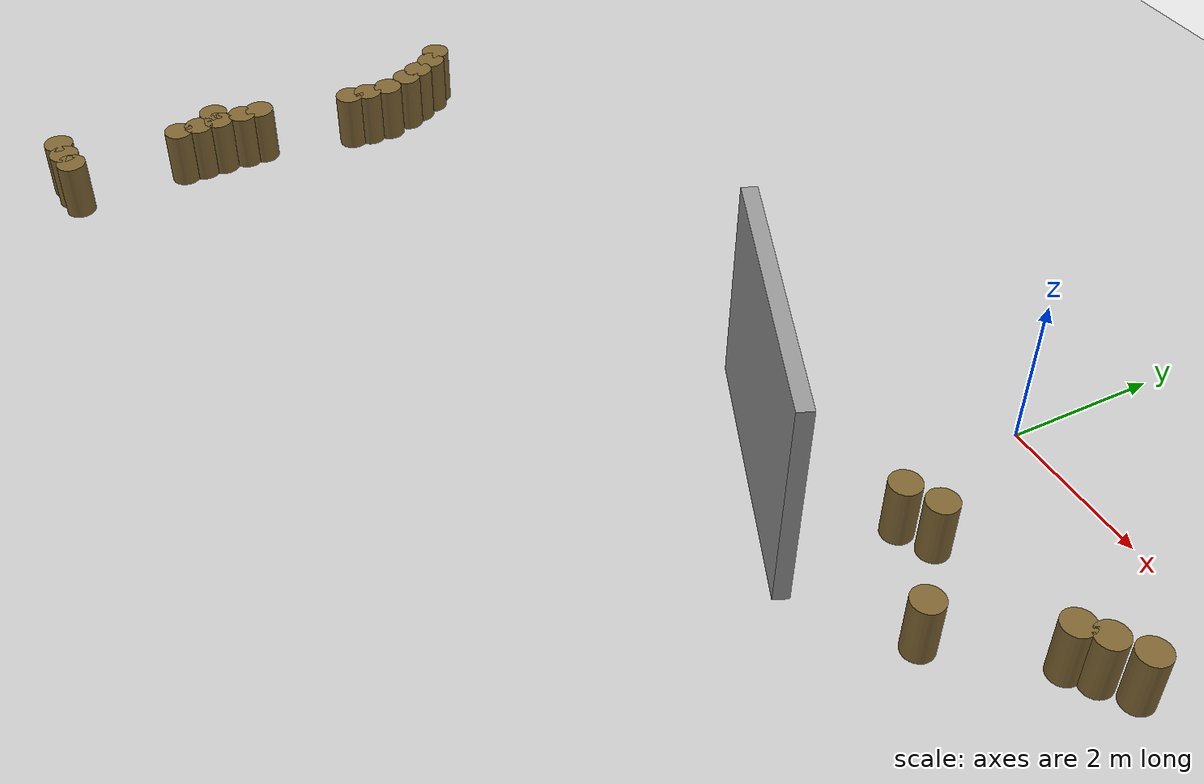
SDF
<sdf version="1.7">
 <world name="default">
  <model name="ground_plane">
   <static>1</static>
   <link name="link">
    <collision name="collision">
     <geometry><plane><normal>0 0 1</normal><size>100 100</size></plane></geometry>
     <surface><friction><ode><mu>100</mu><mu2>50</mu2></ode></friction></surface>
    </collision>
    <visual name="visual">
     <cast_shadows>0</cast_shadows>
     <geometry><plane><normal>0 0 1</normal><size>100 100</size></plane></geometry>
     <material>
      <script><uri>file://media/materials/scripts/gazebo.material</uri><name>Gazebo/Grey</name></script>
     </material>
    </visual>
   </link>
  </model>
  <model name="mini_cylinder_0_clone_0_clone_clone_clone_clone_5">
   <link name="link">
    <inertial>
     <mass>1</mass>
     <inertia><ixx>0.145833</ixx><ixy>0</ixy><ixz>0</ixz><iyy>0.145833</iyy><iyz>0</iyz><izz>0.125</izz></inertia>
    </inertial>
    <visual name="visual">
     <geometry><cylinder><radius>0.2</radius><length>0.8</length></cylinder></geometry>
     <material>
      <script><name>Gazebo/Grey</name><uri>file://media/materials/scripts/gazebo.material</uri></script>
      <shader type="vertex"><normal_map>__default__</normal_map></shader>
      <ambient>0.5 0.4 0.2 1</ambient>
      <diffuse>0.7 0.7 0.7 1</diffuse>
      <specular>0.01 0.01 0.01 1</specular>
      <emissive>0 0 0 1</emissive>
     </material>
    </visual>
    <collision name="collision">
     <geometry><cylinder><radius>0.2</radius><length>0.8</length></cylinder></geometry>
     <surface>
      <friction>
       <ode><mu>1</mu><mu2>1</mu2><fdir1>0 0 0</fdir1><slip1>0</slip1><slip2>0</slip2></ode>
       <torsional>
        <coefficient>1</coefficient>
        <patch_radius>0</patch_radius>
        <surface_radius>0</surface_radius>
        <use_patch_radius>1</use_patch_radius>
        <ode><slip>0</slip></ode>
       </torsional>
      </friction>
      <bounce><restitution_coefficient>0</restitution_coefficient><threshold>1e+06</threshold></bounce>
      <contact>
       <collide_without_contact>0</collide_without_contact>
       <collide_without_contact_bitmask>1</collide_without_contact_bitmask>
       <collide_bitmask>1</collide_bitmask>
       <ode>
        <soft_cfm>0</soft_cfm>
        <soft_erp>0.2</soft_erp>
        <kp>1e+13</kp>
        <kd>1</kd>
        <max_vel>0.01</max_vel>
        <min_depth>0</min_depth>
       </ode>
       <bullet>
        <split_impulse>1</split_impulse>
        <split_impulse_penetration_threshold>-0.01</split_impulse_penetration_threshold>
        <soft_cfm>0</soft_cfm>
        <soft_erp>0.2</soft_erp>
        <kp>1e+13</kp>
        <kd>1</kd>
       </bullet>
      </contact>
     </surface>
    </collision>
   </link>
   <static>1</static>
   <pose>0.594741 -2.19524 0.4 0 -0 0</pose>
  </model>
  <model name="mini_cylinder_0_clone_0_clone_clone_clone_clone_6">
   <link name="link">
    <inertial>
     <mass>1</mass>
     <inertia><ixx>0.145833</ixx><ixy>0</ixy><ixz>0</ixz><iyy>0.145833</iyy><iyz>0</iyz><izz>0.125</izz></inertia>
    </inertial>
    <visual name="visual">
     <geometry><cylinder><radius>0.2</radius><length>0.8</length></cylinder></geometry>
     <material>
      <script><name>Gazebo/Grey</name><uri>file://media/materials/scripts/gazebo.material</uri></script>
      <shader type="vertex"><normal_map>__default__</normal_map></shader>
      <ambient>0.5 0.4 0.2 1</ambient>
      <diffuse>0.7 0.7 0.7 1</diffuse>
      <specular>0.01 0.01 0.01 1</specular>
      <emissive>0 0 0 1</emissive>
     </material>
    </visual>
    <collision name="collision">
     <geometry><cylinder><radius>0.2</radius><length>0.8</length></cylinder></geometry>
     <surface>
      <friction>
       <ode><mu>1</mu><mu2>1</mu2><fdir1>0 0 0</fdir1><slip1>0</slip1><slip2>0</slip2></ode>
       <torsional>
        <coefficient>1</coefficient>
        <patch_radius>0</patch_radius>
        <surface_radius>0</surface_radius>
        <use_patch_radius>1</use_patch_radius>
        <ode><slip>0</slip></ode>
       </torsional>
      </friction>
      <bounce><restitution_coefficient>0</restitution_coefficient><threshold>1e+06</threshold></bounce>
      <contact>
       <collide_without_contact>0</collide_without_contact>
       <collide_without_contact_bitmask>1</collide_without_contact_bitmask>
       <collide_bitmask>1</collide_bitmask>
       <ode>
        <soft_cfm>0</soft_cfm>
        <soft_erp>0.2</soft_erp>
        <kp>1e+13</kp>
        <kd>1</kd>
        <max_vel>0.01</max_vel>
        <min_depth>0</min_depth>
       </ode>
       <bullet>
        <split_impulse>1</split_impulse>
        <split_impulse_penetration_threshold>-0.01</split_impulse_penetration_threshold>
        <soft_cfm>0</soft_cfm>
        <soft_erp>0.2</soft_erp>
        <kp>1e+13</kp>
        <kd>1</kd>
       </bullet>
      </contact>
     </surface>
    </collision>
   </link>
   <static>1</static>
   <pose>1 -2 0.4 0 -0 0</pose>
  </model>
  <model name="mini_cylinder_0_clone_0_clone_clone_clone_clone_7">
   <link name="link">
    <inertial>
     <mass>1</mass>
     <inertia><ixx>0.145833</ixx><ixy>0</ixy><ixz>0</ixz><iyy>0.145833</iyy><iyz>0</iyz><izz>0.125</izz></inertia>
    </inertial>
    <visual name="visual">
     <geometry><cylinder><radius>0.2</radius><length>0.8</length></cylinder></geometry>
     <material>
      <script><name>Gazebo/Grey</name><uri>file://media/materials/scripts/gazebo.material</uri></script>
      <shader type="vertex"><normal_map>__default__</normal_map></shader>
      <ambient>0.5 0.4 0.2 1</ambient>
      <diffuse>0.7 0.7 0.7 1</diffuse>
      <specular>0.01 0.01 0.01 1</specular>
      <emissive>0 0 0 1</emissive>
     </material>
    </visual>
    <collision name="collision">
     <geometry><cylinder><radius>0.2</radius><length>0.8</length></cylinder></geometry>
     <surface>
      <friction>
       <ode><mu>1</mu><mu2>1</mu2><fdir1>0 0 0</fdir1><slip1>0</slip1><slip2>0</slip2></ode>
       <torsional>
        <coefficient>1</coefficient>
        <patch_radius>0</patch_radius>
        <surface_radius>0</surface_radius>
        <use_patch_radius>1</use_patch_radius>
        <ode><slip>0</slip></ode>
       </torsional>
      </friction>
      <bounce><restitution_coefficient>0</restitution_coefficient><threshold>1e+06</threshold></bounce>
      <contact>
       <collide_without_contact>0</collide_without_contact>
       <collide_without_contact_bitmask>1</collide_without_contact_bitmask>
       <collide_bitmask>1</collide_bitmask>
       <ode>
        <soft_cfm>0</soft_cfm>
        <soft_erp>0.2</soft_erp>
        <kp>1e+13</kp>
        <kd>1</kd>
        <max_vel>0.01</max_vel>
        <min_depth>0</min_depth>
       </ode>
       <bullet>
        <split_impulse>1</split_impulse>
        <split_impulse_penetration_threshold>-0.01</split_impulse_penetration_threshold>
        <soft_cfm>0</soft_cfm>
        <soft_erp>0.2</soft_erp>
        <kp>1e+13</kp>
        <kd>1</kd>
       </bullet>
      </contact>
     </surface>
    </collision>
   </link>
   <static>1</static>
   <pose>2.95172 -1.80895 0.4 0 -0 0</pose>
  </model>
  <model name="mini_cylinder_0_clone_0_clone_clone_clone_clone_8">
   <link name="link">
    <inertial>
     <mass>1</mass>
     <inertia><ixx>0.145833</ixx><ixy>0</ixy><ixz>0</ixz><iyy>0.145833</iyy><iyz>0</iyz><izz>0.125</izz></inertia>
    </inertial>
    <visual name="visual">
     <geometry><cylinder><radius>0.2</radius><length>0.8</length></cylinder></geometry>
     <material>
      <script><name>Gazebo/Grey</name><uri>file://media/materials/scripts/gazebo.material</uri></script>
      <shader type="vertex"><normal_map>__default__</normal_map></shader>
      <ambient>0.5 0.4 0.2 1</ambient>
      <diffuse>0.7 0.7 0.7 1</diffuse>
      <specular>0.01 0.01 0.01 1</specular>
      <emissive>0 0 0 1</emissive>
     </material>
    </visual>
    <collision name="collision">
     <geometry><cylinder><radius>0.2</radius><length>0.8</length></cylinder></geometry>
     <surface>
      <friction>
       <ode><mu>1</mu><mu2>1</mu2><fdir1>0 0 0</fdir1><slip1>0</slip1><slip2>0</slip2></ode>
       <torsional>
        <coefficient>1</coefficient>
        <patch_radius>0</patch_radius>
        <surface_radius>0</surface_radius>
        <use_patch_radius>1</use_patch_radius>
        <ode><slip>0</slip></ode>
       </torsional>
      </friction>
      <bounce><restitution_coefficient>0</restitution_coefficient><threshold>1e+06</threshold></bounce>
      <contact>
       <collide_without_contact>0</collide_without_contact>
       <collide_without_contact_bitmask>1</collide_without_contact_bitmask>
       <collide_bitmask>1</collide_bitmask>
       <ode>
        <soft_cfm>0</soft_cfm>
        <soft_erp>0.2</soft_erp>
        <kp>1e+13</kp>
        <kd>1</kd>
        <max_vel>0.01</max_vel>
        <min_depth>0</min_depth>
       </ode>
       <bullet>
        <split_impulse>1</split_impulse>
        <split_impulse_penetration_threshold>-0.01</split_impulse_penetration_threshold>
        <soft_cfm>0</soft_cfm>
        <soft_erp>0.2</soft_erp>
        <kp>1e+13</kp>
        <kd>1</kd>
       </bullet>
      </contact>
     </surface>
    </collision>
   </link>
   <static>1</static>
   <pose>3.22202 -1.6158 0.4 0 -0 0</pose>
  </model>
  <model name="mini_cylinder_0_clone_0_clone_clone_clone_clone_9">
   <link name="link">
    <inertial>
     <mass>1</mass>
     <inertia><ixx>0.145833</ixx><ixy>0</ixy><ixz>0</ixz><iyy>0.145833</iyy><iyz>0</iyz><izz>0.125</izz></inertia>
    </inertial>
    <visual name="visual">
     <geometry><cylinder><radius>0.2</radius><length>0.8</length></cylinder></geometry>
     <material>
      <script><name>Gazebo/Grey</name><uri>file://media/materials/scripts/gazebo.material</uri></script>
      <shader type="vertex"><normal_map>__default__</normal_map></shader>
      <ambient>0.5 0.4 0.2 1</ambient>
      <diffuse>0.7 0.7 0.7 1</diffuse>
      <specular>0.01 0.01 0.01 1</specular>
      <emissive>0 0 0 1</emissive>
     </material>
    </visual>
    <collision name="collision">
     <geometry><cylinder><radius>0.2</radius><length>0.8</length></cylinder></geometry>
     <surface>
      <friction>
       <ode><mu>1</mu><mu2>1</mu2><fdir1>0 0 0</fdir1><slip1>0</slip1><slip2>0</slip2></ode>
       <torsional>
        <coefficient>1</coefficient>
        <patch_radius>0</patch_radius>
        <surface_radius>0</surface_radius>
        <use_patch_radius>1</use_patch_radius>
        <ode><slip>0</slip></ode>
       </torsional>
      </friction>
      <bounce><restitution_coefficient>0</restitution_coefficient><threshold>1e+06</threshold></bounce>
      <contact>
       <collide_without_contact>0</collide_without_contact>
       <collide_without_contact_bitmask>1</collide_without_contact_bitmask>
       <collide_bitmask>1</collide_bitmask>
       <ode>
        <soft_cfm>0</soft_cfm>
        <soft_erp>0.2</soft_erp>
        <kp>1e+13</kp>
        <kd>1</kd>
        <max_vel>0.01</max_vel>
        <min_depth>0</min_depth>
       </ode>
       <bullet>
        <split_impulse>1</split_impulse>
        <split_impulse_penetration_threshold>-0.01</split_impulse_penetration_threshold>
        <soft_cfm>0</soft_cfm>
        <soft_erp>0.2</soft_erp>
        <kp>1e+13</kp>
        <kd>1</kd>
       </bullet>
      </contact>
     </surface>
    </collision>
   </link>
   <static>1</static>
   <pose>3.56983 -1.38381 0.4 0 -0 0</pose>
  </model>
  <model name="mini_cylinder_0_clone_0_clone_clone_clone_clone_11">
   <link name="link">
    <inertial>
     <mass>1</mass>
     <inertia><ixx>0.145833</ixx><ixy>0</ixy><ixz>0</ixz><iyy>0.145833</iyy><iyz>0</iyz><izz>0.125</izz></inertia>
    </inertial>
    <visual name="visual">
     <geometry><cylinder><radius>0.2</radius><length>0.8</length></cylinder></geometry>
     <material>
      <script><name>Gazebo/Grey</name><uri>file://media/materials/scripts/gazebo.material</uri></script>
      <shader type="vertex"><normal_map>__default__</normal_map></shader>
      <ambient>0.5 0.4 0.2 1</ambient>
      <diffuse>0.7 0.7 0.7 1</diffuse>
      <specular>0.01 0.01 0.01 1</specular>
      <emissive>0 0 0 1</emissive>
     </material>
    </visual>
    <collision name="collision">
     <geometry><cylinder><radius>0.2</radius><length>0.8</length></cylinder></geometry>
     <surface>
      <friction>
       <ode><mu>1</mu><mu2>1</mu2><fdir1>0 0 0</fdir1><slip1>0</slip1><slip2>0</slip2></ode>
       <torsional>
        <coefficient>1</coefficient>
        <patch_radius>0</patch_radius>
        <surface_radius>0</surface_radius>
        <use_patch_radius>1</use_patch_radius>
        <ode><slip>0</slip></ode>
       </torsional>
      </friction>
      <bounce><restitution_coefficient>0</restitution_coefficient><threshold>1e+06</threshold></bounce>
      <contact>
       <collide_without_contact>0</collide_without_contact>
       <collide_without_contact_bitmask>1</collide_without_contact_bitmask>
       <collide_bitmask>1</collide_bitmask>
       <ode>
        <soft_cfm>0</soft_cfm>
        <soft_erp>0.2</soft_erp>
        <kp>1e+13</kp>
        <kd>1</kd>
        <max_vel>0.01</max_vel>
        <min_depth>0</min_depth>
       </ode>
       <bullet>
        <split_impulse>1</split_impulse>
        <split_impulse_penetration_threshold>-0.01</split_impulse_penetration_threshold>
        <soft_cfm>0</soft_cfm>
        <soft_erp>0.2</soft_erp>
        <kp>1e+13</kp>
        <kd>1</kd>
       </bullet>
      </contact>
     </surface>
    </collision>
   </link>
   <static>1</static>
   <pose>2.02446 -2.96819 0.4 0 -0 0</pose>
  </model>
  <model name="mini_cylinder_0_clone_0_clone_clone_clone_clone_3_clone_13">
   <link name="link">
    <inertial>
     <mass>1</mass>
     <inertia><ixx>0.145833</ixx><ixy>0</ixy><ixz>0</ixz><iyy>0.145833</iyy><iyz>0</iyz><izz>0.125</izz></inertia>
    </inertial>
    <visual name="visual">
     <geometry><cylinder><radius>0.2</radius><length>0.8</length></cylinder></geometry>
     <material>
      <script><name>Gazebo/Grey</name><uri>file://media/materials/scripts/gazebo.material</uri></script>
      <shader type="vertex"><normal_map>__default__</normal_map></shader>
      <ambient>0.5 0.4 0.2 1</ambient>
      <diffuse>0.7 0.7 0.7 1</diffuse>
      <specular>0.01 0.01 0.01 1</specular>
      <emissive>0 0 0 1</emissive>
     </material>
    </visual>
    <collision name="collision">
     <geometry><cylinder><radius>0.2</radius><length>0.8</length></cylinder></geometry>
     <surface>
      <friction>
       <ode><mu>1</mu><mu2>1</mu2><fdir1>0 0 0</fdir1><slip1>0</slip1><slip2>0</slip2></ode>
       <torsional>
        <coefficient>1</coefficient>
        <patch_radius>0</patch_radius>
        <surface_radius>0</surface_radius>
        <use_patch_radius>1</use_patch_radius>
        <ode><slip>0</slip></ode>
       </torsional>
      </friction>
      <bounce><restitution_coefficient>0</restitution_coefficient><threshold>1e+06</threshold></bounce>
      <contact>
       <collide_without_contact>0</collide_without_contact>
       <collide_without_contact_bitmask>1</collide_without_contact_bitmask>
       <collide_bitmask>1</collide_bitmask>
       <ode>
        <soft_cfm>0</soft_cfm>
        <soft_erp>0.2</soft_erp>
        <kp>1e+13</kp>
        <kd>1</kd>
        <max_vel>0.01</max_vel>
        <min_depth>0</min_depth>
       </ode>
       <bullet>
        <split_impulse>1</split_impulse>
        <split_impulse_penetration_threshold>-0.01</split_impulse_penetration_threshold>
        <soft_cfm>0</soft_cfm>
        <soft_erp>0.2</soft_erp>
        <kp>1e+13</kp>
        <kd>1</kd>
       </bullet>
      </contact>
     </surface>
    </collision>
   </link>
   <static>1</static>
   <pose>-10.069 -3.1775 0.4 0 -0 0</pose>
  </model>
  <model name="mini_cylinder_0_clone_0_clone_clone_clone_clone_3_clone_14">
   <link name="link">
    <inertial>
     <mass>1</mass>
     <inertia><ixx>0.145833</ixx><ixy>0</ixy><ixz>0</ixz><iyy>0.145833</iyy><iyz>0</iyz><izz>0.125</izz></inertia>
    </inertial>
    <visual name="visual">
     <geometry><cylinder><radius>0.2</radius><length>0.8</length></cylinder></geometry>
     <material>
      <script><name>Gazebo/Grey</name><uri>file://media/materials/scripts/gazebo.material</uri></script>
      <shader type="vertex"><normal_map>__default__</normal_map></shader>
      <ambient>0.5 0.4 0.2 1</ambient>
      <diffuse>0.7 0.7 0.7 1</diffuse>
      <specular>0.01 0.01 0.01 1</specular>
      <emissive>0 0 0 1</emissive>
     </material>
    </visual>
    <collision name="collision">
     <geometry><cylinder><radius>0.2</radius><length>0.8</length></cylinder></geometry>
     <surface>
      <friction>
       <ode><mu>1</mu><mu2>1</mu2><fdir1>0 0 0</fdir1><slip1>0</slip1><slip2>0</slip2></ode>
       <torsional>
        <coefficient>1</coefficient>
        <patch_radius>0</patch_radius>
        <surface_radius>0</surface_radius>
        <use_patch_radius>1</use_patch_radius>
        <ode><slip>0</slip></ode>
       </torsional>
      </friction>
      <bounce><restitution_coefficient>0</restitution_coefficient><threshold>1e+06</threshold></bounce>
      <contact>
       <collide_without_contact>0</collide_without_contact>
       <collide_without_contact_bitmask>1</collide_without_contact_bitmask>
       <collide_bitmask>1</collide_bitmask>
       <ode>
        <soft_cfm>0</soft_cfm>
        <soft_erp>0.2</soft_erp>
        <kp>1e+13</kp>
        <kd>1</kd>
        <max_vel>0.01</max_vel>
        <min_depth>0</min_depth>
       </ode>
       <bullet>
        <split_impulse>1</split_impulse>
        <split_impulse_penetration_threshold>-0.01</split_impulse_penetration_threshold>
        <soft_cfm>0</soft_cfm>
        <soft_erp>0.2</soft_erp>
        <kp>1e+13</kp>
        <kd>1</kd>
       </bullet>
      </contact>
     </surface>
    </collision>
   </link>
   <static>1</static>
   <pose>-9.87176 -3.33436 0.4 0 -0 0</pose>
  </model>
  <model name="mini_cylinder_0_clone_0_clone_clone_clone_clone_3_clone_15">
   <link name="link">
    <inertial>
     <mass>1</mass>
     <inertia><ixx>0.145833</ixx><ixy>0</ixy><ixz>0</ixz><iyy>0.145833</iyy><iyz>0</iyz><izz>0.125</izz></inertia>
    </inertial>
    <visual name="visual">
     <geometry><cylinder><radius>0.2</radius><length>0.8</length></cylinder></geometry>
     <material>
      <script><name>Gazebo/Grey</name><uri>file://media/materials/scripts/gazebo.material</uri></script>
      <shader type="vertex"><normal_map>__default__</normal_map></shader>
      <ambient>0.5 0.4 0.2 1</ambient>
      <diffuse>0.7 0.7 0.7 1</diffuse>
      <specular>0.01 0.01 0.01 1</specular>
      <emissive>0 0 0 1</emissive>
     </material>
    </visual>
    <collision name="collision">
     <geometry><cylinder><radius>0.2</radius><length>0.8</length></cylinder></geometry>
     <surface>
      <friction>
       <ode><mu>1</mu><mu2>1</mu2><fdir1>0 0 0</fdir1><slip1>0</slip1><slip2>0</slip2></ode>
       <torsional>
        <coefficient>1</coefficient>
        <patch_radius>0</patch_radius>
        <surface_radius>0</surface_radius>
        <use_patch_radius>1</use_patch_radius>
        <ode><slip>0</slip></ode>
       </torsional>
      </friction>
      <bounce><restitution_coefficient>0</restitution_coefficient><threshold>1e+06</threshold></bounce>
      <contact>
       <collide_without_contact>0</collide_without_contact>
       <collide_without_contact_bitmask>1</collide_without_contact_bitmask>
       <collide_bitmask>1</collide_bitmask>
       <ode>
        <soft_cfm>0</soft_cfm>
        <soft_erp>0.2</soft_erp>
        <kp>1e+13</kp>
        <kd>1</kd>
        <max_vel>0.01</max_vel>
        <min_depth>0</min_depth>
       </ode>
       <bullet>
        <split_impulse>1</split_impulse>
        <split_impulse_penetration_threshold>-0.01</split_impulse_penetration_threshold>
        <soft_cfm>0</soft_cfm>
        <soft_erp>0.2</soft_erp>
        <kp>1e+13</kp>
        <kd>1</kd>
       </bullet>
      </contact>
     </surface>
    </collision>
   </link>
   <static>1</static>
   <pose>-9.71455 -3.60876 0.4 0 -0 0</pose>
  </model>
  <model name="mini_cylinder_0_clone_0_clone_clone_clone_clone_3_clone_16">
   <link name="link">
    <inertial>
     <mass>1</mass>
     <inertia><ixx>0.145833</ixx><ixy>0</ixy><ixz>0</ixz><iyy>0.145833</iyy><iyz>0</iyz><izz>0.125</izz></inertia>
    </inertial>
    <visual name="visual">
     <geometry><cylinder><radius>0.2</radius><length>0.8</length></cylinder></geometry>
     <material>
      <script><name>Gazebo/Grey</name><uri>file://media/materials/scripts/gazebo.material</uri></script>
      <shader type="vertex"><normal_map>__default__</normal_map></shader>
      <ambient>0.5 0.4 0.2 1</ambient>
      <diffuse>0.7 0.7 0.7 1</diffuse>
      <specular>0.01 0.01 0.01 1</specular>
      <emissive>0 0 0 1</emissive>
     </material>
    </visual>
    <collision name="collision">
     <geometry><cylinder><radius>0.2</radius><length>0.8</length></cylinder></geometry>
     <surface>
      <friction>
       <ode><mu>1</mu><mu2>1</mu2><fdir1>0 0 0</fdir1><slip1>0</slip1><slip2>0</slip2></ode>
       <torsional>
        <coefficient>1</coefficient>
        <patch_radius>0</patch_radius>
        <surface_radius>0</surface_radius>
        <use_patch_radius>1</use_patch_radius>
        <ode><slip>0</slip></ode>
       </torsional>
      </friction>
      <bounce><restitution_coefficient>0</restitution_coefficient><threshold>1e+06</threshold></bounce>
      <contact>
       <collide_without_contact>0</collide_without_contact>
       <collide_without_contact_bitmask>1</collide_without_contact_bitmask>
       <collide_bitmask>1</collide_bitmask>
       <ode>
        <soft_cfm>0</soft_cfm>
        <soft_erp>0.2</soft_erp>
        <kp>1e+13</kp>
        <kd>1</kd>
        <max_vel>0.01</max_vel>
        <min_depth>0</min_depth>
       </ode>
       <bullet>
        <split_impulse>1</split_impulse>
        <split_impulse_penetration_threshold>-0.01</split_impulse_penetration_threshold>
        <soft_cfm>0</soft_cfm>
        <soft_erp>0.2</soft_erp>
        <kp>1e+13</kp>
        <kd>1</kd>
       </bullet>
      </contact>
     </surface>
    </collision>
   </link>
   <static>1</static>
   <pose>-9.59735 -3.84457 0.4 0 -0 0</pose>
  </model>
  <model name="mini_cylinder_0_clone_0_clone_clone_clone_clone_3_clone_17">
   <link name="link">
    <inertial>
     <mass>1</mass>
     <inertia><ixx>0.145833</ixx><ixy>0</ixy><ixz>0</ixz><iyy>0.145833</iyy><iyz>0</iyz><izz>0.125</izz></inertia>
    </inertial>
    <visual name="visual">
     <geometry><cylinder><radius>0.2</radius><length>0.8</length></cylinder></geometry>
     <material>
      <script><name>Gazebo/Grey</name><uri>file://media/materials/scripts/gazebo.material</uri></script>
      <shader type="vertex"><normal_map>__default__</normal_map></shader>
      <ambient>0.5 0.4 0.2 1</ambient>
      <diffuse>0.7 0.7 0.7 1</diffuse>
      <specular>0.01 0.01 0.01 1</specular>
      <emissive>0 0 0 1</emissive>
     </material>
    </visual>
    <collision name="collision">
     <geometry><cylinder><radius>0.2</radius><length>0.8</length></cylinder></geometry>
     <surface>
      <friction>
       <ode><mu>1</mu><mu2>1</mu2><fdir1>0 0 0</fdir1><slip1>0</slip1><slip2>0</slip2></ode>
       <torsional>
        <coefficient>1</coefficient>
        <patch_radius>0</patch_radius>
        <surface_radius>0</surface_radius>
        <use_patch_radius>1</use_patch_radius>
        <ode><slip>0</slip></ode>
       </torsional>
      </friction>
      <bounce><restitution_coefficient>0</restitution_coefficient><threshold>1e+06</threshold></bounce>
      <contact>
       <collide_without_contact>0</collide_without_contact>
       <collide_without_contact_bitmask>1</collide_without_contact_bitmask>
       <collide_bitmask>1</collide_bitmask>
       <ode>
        <soft_cfm>0</soft_cfm>
        <soft_erp>0.2</soft_erp>
        <kp>1e+13</kp>
        <kd>1</kd>
        <max_vel>0.01</max_vel>
        <min_depth>0</min_depth>
       </ode>
       <bullet>
        <split_impulse>1</split_impulse>
        <split_impulse_penetration_threshold>-0.01</split_impulse_penetration_threshold>
        <soft_cfm>0</soft_cfm>
        <soft_erp>0.2</soft_erp>
        <kp>1e+13</kp>
        <kd>1</kd>
       </bullet>
      </contact>
     </surface>
    </collision>
   </link>
   <static>1</static>
   <pose>-9.47945 -4.1983 0.4 0 -0 0</pose>
  </model>
  <model name="mini_cylinder_0_clone_0_clone_clone_clone_clone_3_clone_18">
   <link name="link">
    <inertial>
     <mass>1</mass>
     <inertia><ixx>0.145833</ixx><ixy>0</ixy><ixz>0</ixz><iyy>0.145833</iyy><iyz>0</iyz><izz>0.125</izz></inertia>
    </inertial>
    <visual name="visual">
     <geometry><cylinder><radius>0.2</radius><length>0.8</length></cylinder></geometry>
     <material>
      <script><name>Gazebo/Grey</name><uri>file://media/materials/scripts/gazebo.material</uri></script>
      <shader type="vertex"><normal_map>__default__</normal_map></shader>
      <ambient>0.5 0.4 0.2 1</ambient>
      <diffuse>0.7 0.7 0.7 1</diffuse>
      <specular>0.01 0.01 0.01 1</specular>
      <emissive>0 0 0 1</emissive>
     </material>
    </visual>
    <collision name="collision">
     <geometry><cylinder><radius>0.2</radius><length>0.8</length></cylinder></geometry>
     <surface>
      <friction>
       <ode><mu>1</mu><mu2>1</mu2><fdir1>0 0 0</fdir1><slip1>0</slip1><slip2>0</slip2></ode>
       <torsional>
        <coefficient>1</coefficient>
        <patch_radius>0</patch_radius>
        <surface_radius>0</surface_radius>
        <use_patch_radius>1</use_patch_radius>
        <ode><slip>0</slip></ode>
       </torsional>
      </friction>
      <bounce><restitution_coefficient>0</restitution_coefficient><threshold>1e+06</threshold></bounce>
      <contact>
       <collide_without_contact>0</collide_without_contact>
       <collide_without_contact_bitmask>1</collide_without_contact_bitmask>
       <collide_bitmask>1</collide_bitmask>
       <ode>
        <soft_cfm>0</soft_cfm>
        <soft_erp>0.2</soft_erp>
        <kp>1e+13</kp>
        <kd>1</kd>
        <max_vel>0.01</max_vel>
        <min_depth>0</min_depth>
       </ode>
       <bullet>
        <split_impulse>1</split_impulse>
        <split_impulse_penetration_threshold>-0.01</split_impulse_penetration_threshold>
        <soft_cfm>0</soft_cfm>
        <soft_erp>0.2</soft_erp>
        <kp>1e+13</kp>
        <kd>1</kd>
       </bullet>
      </contact>
     </surface>
    </collision>
   </link>
   <static>1</static>
   <pose>-9.47945 -4.512 0.4 0 -0 0</pose>
  </model>
  <model name="mini_cylinder_0_clone_0_clone_clone_clone_clone_3_clone_20_clone_105">
   <link name="link">
    <inertial>
     <mass>1</mass>
     <inertia><ixx>0.145833</ixx><ixy>0</ixy><ixz>0</ixz><iyy>0.145833</iyy><iyz>0</iyz><izz>0.125</izz></inertia>
    </inertial>
    <visual name="visual">
     <geometry><cylinder><radius>0.2</radius><length>0.8</length></cylinder></geometry>
     <material>
      <script><name>Gazebo/Grey</name><uri>file://media/materials/scripts/gazebo.material</uri></script>
      <shader type="vertex"><normal_map>__default__</normal_map></shader>
      <ambient>0.5 0.4 0.2 1</ambient>
      <diffuse>0.7 0.7 0.7 1</diffuse>
      <specular>0.01 0.01 0.01 1</specular>
      <emissive>0 0 0 1</emissive>
     </material>
    </visual>
    <collision name="collision">
     <geometry><cylinder><radius>0.2</radius><length>0.8</length></cylinder></geometry>
     <surface>
      <friction>
       <ode><mu>1</mu><mu2>1</mu2><fdir1>0 0 0</fdir1><slip1>0</slip1><slip2>0</slip2></ode>
       <torsional>
        <coefficient>1</coefficient>
        <patch_radius>0</patch_radius>
        <surface_radius>0</surface_radius>
        <use_patch_radius>1</use_patch_radius>
        <ode><slip>0</slip></ode>
       </torsional>
      </friction>
      <bounce><restitution_coefficient>0</restitution_coefficient><threshold>1e+06</threshold></bounce>
      <contact>
       <collide_without_contact>0</collide_without_contact>
       <collide_without_contact_bitmask>1</collide_without_contact_bitmask>
       <collide_bitmask>1</collide_bitmask>
       <ode>
        <soft_cfm>0</soft_cfm>
        <soft_erp>0.2</soft_erp>
        <kp>1e+13</kp>
        <kd>1</kd>
        <max_vel>0.01</max_vel>
        <min_depth>0</min_depth>
       </ode>
       <bullet>
        <split_impulse>1</split_impulse>
        <split_impulse_penetration_threshold>-0.01</split_impulse_penetration_threshold>
        <soft_cfm>0</soft_cfm>
        <soft_erp>0.2</soft_erp>
        <kp>1e+13</kp>
        <kd>1</kd>
       </bullet>
      </contact>
     </surface>
    </collision>
   </link>
   <static>1</static>
   <pose>-9.51001 -4.78474 0.4 0 -0 0</pose>
  </model>
  <model name="mini_cylinder_0_clone_0_clone_clone_clone_clone_3_clone_20_clone_120">
   <link name="link">
    <inertial>
     <mass>1</mass>
     <inertia><ixx>0.145833</ixx><ixy>0</ixy><ixz>0</ixz><iyy>0.145833</iyy><iyz>0</iyz><izz>0.125</izz></inertia>
    </inertial>
    <visual name="visual">
     <geometry><cylinder><radius>0.2</radius><length>0.8</length></cylinder></geometry>
     <material>
      <script><name>Gazebo/Grey</name><uri>file://media/materials/scripts/gazebo.material</uri></script>
      <shader type="vertex"><normal_map>__default__</normal_map></shader>
      <ambient>0.5 0.4 0.2 1</ambient>
      <diffuse>0.7 0.7 0.7 1</diffuse>
      <specular>0.01 0.01 0.01 1</specular>
      <emissive>0 0 0 1</emissive>
     </material>
    </visual>
    <collision name="collision">
     <geometry><cylinder><radius>0.2</radius><length>0.8</length></cylinder></geometry>
     <surface>
      <friction>
       <ode><mu>1</mu><mu2>1</mu2><fdir1>0 0 0</fdir1><slip1>0</slip1><slip2>0</slip2></ode>
       <torsional>
        <coefficient>1</coefficient>
        <patch_radius>0</patch_radius>
        <surface_radius>0</surface_radius>
        <use_patch_radius>1</use_patch_radius>
        <ode><slip>0</slip></ode>
       </torsional>
      </friction>
      <bounce><restitution_coefficient>0</restitution_coefficient><threshold>1e+06</threshold></bounce>
      <contact>
       <collide_without_contact>0</collide_without_contact>
       <collide_without_contact_bitmask>1</collide_without_contact_bitmask>
       <collide_bitmask>1</collide_bitmask>
       <ode>
        <soft_cfm>0</soft_cfm>
        <soft_erp>0.2</soft_erp>
        <kp>1e+13</kp>
        <kd>1</kd>
        <max_vel>0.01</max_vel>
        <min_depth>0</min_depth>
       </ode>
       <bullet>
        <split_impulse>1</split_impulse>
        <split_impulse_penetration_threshold>-0.01</split_impulse_penetration_threshold>
        <soft_cfm>0</soft_cfm>
        <soft_erp>0.2</soft_erp>
        <kp>1e+13</kp>
        <kd>1</kd>
       </bullet>
      </contact>
     </surface>
    </collision>
   </link>
   <static>1</static>
   <pose>-9.97185 -6.71021 0.4 0 -0 0</pose>
  </model>
  <model name="mini_cylinder_0_clone_0_clone_clone_clone_clone_3_clone_20_clone_121">
   <link name="link">
    <inertial>
     <mass>1</mass>
     <inertia><ixx>0.145833</ixx><ixy>0</ixy><ixz>0</ixz><iyy>0.145833</iyy><iyz>0</iyz><izz>0.125</izz></inertia>
    </inertial>
    <visual name="visual">
     <geometry><cylinder><radius>0.2</radius><length>0.8</length></cylinder></geometry>
     <material>
      <script><name>Gazebo/Grey</name><uri>file://media/materials/scripts/gazebo.material</uri></script>
      <shader type="vertex"><normal_map>__default__</normal_map></shader>
      <ambient>0.5 0.4 0.2 1</ambient>
      <diffuse>0.7 0.7 0.7 1</diffuse>
      <specular>0.01 0.01 0.01 1</specular>
      <emissive>0 0 0 1</emissive>
     </material>
    </visual>
    <collision name="collision">
     <geometry><cylinder><radius>0.2</radius><length>0.8</length></cylinder></geometry>
     <surface>
      <friction>
       <ode><mu>1</mu><mu2>1</mu2><fdir1>0 0 0</fdir1><slip1>0</slip1><slip2>0</slip2></ode>
       <torsional>
        <coefficient>1</coefficient>
        <patch_radius>0</patch_radius>
        <surface_radius>0</surface_radius>
        <use_patch_radius>1</use_patch_radius>
        <ode><slip>0</slip></ode>
       </torsional>
      </friction>
      <bounce><restitution_coefficient>0</restitution_coefficient><threshold>1e+06</threshold></bounce>
      <contact>
       <collide_without_contact>0</collide_without_contact>
       <collide_without_contact_bitmask>1</collide_without_contact_bitmask>
       <collide_bitmask>1</collide_bitmask>
       <ode>
        <soft_cfm>0</soft_cfm>
        <soft_erp>0.2</soft_erp>
        <kp>1e+13</kp>
        <kd>1</kd>
        <max_vel>0.01</max_vel>
        <min_depth>0</min_depth>
       </ode>
       <bullet>
        <split_impulse>1</split_impulse>
        <split_impulse_penetration_threshold>-0.01</split_impulse_penetration_threshold>
        <soft_cfm>0</soft_cfm>
        <soft_erp>0.2</soft_erp>
        <kp>1e+13</kp>
        <kd>1</kd>
       </bullet>
      </contact>
     </surface>
    </collision>
   </link>
   <static>1</static>
   <pose>-9.74426 -6.70637 0.4 0 -0 0</pose>
  </model>
  <model name="mini_cylinder_0_clone_0_clone_clone_clone_clone_3_clone_20_clone_122">
   <link name="link">
    <inertial>
     <mass>1</mass>
     <inertia><ixx>0.145833</ixx><ixy>0</ixy><ixz>0</ixz><iyy>0.145833</iyy><iyz>0</iyz><izz>0.125</izz></inertia>
    </inertial>
    <visual name="visual">
     <geometry><cylinder><radius>0.2</radius><length>0.8</length></cylinder></geometry>
     <material>
      <script><name>Gazebo/Grey</name><uri>file://media/materials/scripts/gazebo.material</uri></script>
      <shader type="vertex"><normal_map>__default__</normal_map></shader>
      <ambient>0.5 0.4 0.2 1</ambient>
      <diffuse>0.7 0.7 0.7 1</diffuse>
      <specular>0.01 0.01 0.01 1</specular>
      <emissive>0 0 0 1</emissive>
     </material>
    </visual>
    <collision name="collision">
     <geometry><cylinder><radius>0.2</radius><length>0.8</length></cylinder></geometry>
     <surface>
      <friction>
       <ode><mu>1</mu><mu2>1</mu2><fdir1>0 0 0</fdir1><slip1>0</slip1><slip2>0</slip2></ode>
       <torsional>
        <coefficient>1</coefficient>
        <patch_radius>0</patch_radius>
        <surface_radius>0</surface_radius>
        <use_patch_radius>1</use_patch_radius>
        <ode><slip>0</slip></ode>
       </torsional>
      </friction>
      <bounce><restitution_coefficient>0</restitution_coefficient><threshold>1e+06</threshold></bounce>
      <contact>
       <collide_without_contact>0</collide_without_contact>
       <collide_without_contact_bitmask>1</collide_without_contact_bitmask>
       <collide_bitmask>1</collide_bitmask>
       <ode>
        <soft_cfm>0</soft_cfm>
        <soft_erp>0.2</soft_erp>
        <kp>1e+13</kp>
        <kd>1</kd>
        <max_vel>0.01</max_vel>
        <min_depth>0</min_depth>
       </ode>
       <bullet>
        <split_impulse>1</split_impulse>
        <split_impulse_penetration_threshold>-0.01</split_impulse_penetration_threshold>
        <soft_cfm>0</soft_cfm>
        <soft_erp>0.2</soft_erp>
        <kp>1e+13</kp>
        <kd>1</kd>
       </bullet>
      </contact>
     </surface>
    </collision>
   </link>
   <static>1</static>
   <pose>-9.7542 -6.08907 0.4 0 -0 0</pose>
  </model>
  <model name="mini_cylinder_0_clone_0_clone_clone_clone_clone_3_clone_20_clone_123">
   <link name="link">
    <inertial>
     <mass>1</mass>
     <inertia><ixx>0.145833</ixx><ixy>0</ixy><ixz>0</ixz><iyy>0.145833</iyy><iyz>0</iyz><izz>0.125</izz></inertia>
    </inertial>
    <visual name="visual">
     <geometry><cylinder><radius>0.2</radius><length>0.8</length></cylinder></geometry>
     <material>
      <script><name>Gazebo/Grey</name><uri>file://media/materials/scripts/gazebo.material</uri></script>
      <shader type="vertex"><normal_map>__default__</normal_map></shader>
      <ambient>0.5 0.4 0.2 1</ambient>
      <diffuse>0.7 0.7 0.7 1</diffuse>
      <specular>0.01 0.01 0.01 1</specular>
      <emissive>0 0 0 1</emissive>
     </material>
    </visual>
    <collision name="collision">
     <geometry><cylinder><radius>0.2</radius><length>0.8</length></cylinder></geometry>
     <surface>
      <friction>
       <ode><mu>1</mu><mu2>1</mu2><fdir1>0 0 0</fdir1><slip1>0</slip1><slip2>0</slip2></ode>
       <torsional>
        <coefficient>1</coefficient>
        <patch_radius>0</patch_radius>
        <surface_radius>0</surface_radius>
        <use_patch_radius>1</use_patch_radius>
        <ode><slip>0</slip></ode>
       </torsional>
      </friction>
      <bounce><restitution_coefficient>0</restitution_coefficient><threshold>1e+06</threshold></bounce>
      <contact>
       <collide_without_contact>0</collide_without_contact>
       <collide_without_contact_bitmask>1</collide_without_contact_bitmask>
       <collide_bitmask>1</collide_bitmask>
       <ode>
        <soft_cfm>0</soft_cfm>
        <soft_erp>0.2</soft_erp>
        <kp>1e+13</kp>
        <kd>1</kd>
        <max_vel>0.01</max_vel>
        <min_depth>0</min_depth>
       </ode>
       <bullet>
        <split_impulse>1</split_impulse>
        <split_impulse_penetration_threshold>-0.01</split_impulse_penetration_threshold>
        <soft_cfm>0</soft_cfm>
        <soft_erp>0.2</soft_erp>
        <kp>1e+13</kp>
        <kd>1</kd>
       </bullet>
      </contact>
     </surface>
    </collision>
   </link>
   <static>1</static>
   <pose>-9.75035 -6.34861 0.4 0 -0 0</pose>
  </model>
  <model name="mini_cylinder_0_clone_0_clone_clone_clone_clone_3_clone_20_clone_124">
   <link name="link">
    <inertial>
     <mass>1</mass>
     <inertia><ixx>0.145833</ixx><ixy>0</ixy><ixz>0</ixz><iyy>0.145833</iyy><iyz>0</iyz><izz>0.125</izz></inertia>
    </inertial>
    <visual name="visual">
     <geometry><cylinder><radius>0.2</radius><length>0.8</length></cylinder></geometry>
     <material>
      <script><name>Gazebo/Grey</name><uri>file://media/materials/scripts/gazebo.material</uri></script>
      <shader type="vertex"><normal_map>__default__</normal_map></shader>
      <ambient>0.5 0.4 0.2 1</ambient>
      <diffuse>0.7 0.7 0.7 1</diffuse>
      <specular>0.01 0.01 0.01 1</specular>
      <emissive>0 0 0 1</emissive>
     </material>
    </visual>
    <collision name="collision">
     <geometry><cylinder><radius>0.2</radius><length>0.8</length></cylinder></geometry>
     <surface>
      <friction>
       <ode><mu>1</mu><mu2>1</mu2><fdir1>0 0 0</fdir1><slip1>0</slip1><slip2>0</slip2></ode>
       <torsional>
        <coefficient>1</coefficient>
        <patch_radius>0</patch_radius>
        <surface_radius>0</surface_radius>
        <use_patch_radius>1</use_patch_radius>
        <ode><slip>0</slip></ode>
       </torsional>
      </friction>
      <bounce><restitution_coefficient>0</restitution_coefficient><threshold>1e+06</threshold></bounce>
      <contact>
       <collide_without_contact>0</collide_without_contact>
       <collide_without_contact_bitmask>1</collide_without_contact_bitmask>
       <collide_bitmask>1</collide_bitmask>
       <ode>
        <soft_cfm>0</soft_cfm>
        <soft_erp>0.2</soft_erp>
        <kp>1e+13</kp>
        <kd>1</kd>
        <max_vel>0.01</max_vel>
        <min_depth>0</min_depth>
       </ode>
       <bullet>
        <split_impulse>1</split_impulse>
        <split_impulse_penetration_threshold>-0.01</split_impulse_penetration_threshold>
        <soft_cfm>0</soft_cfm>
        <soft_erp>0.2</soft_erp>
        <kp>1e+13</kp>
        <kd>1</kd>
       </bullet>
      </contact>
     </surface>
    </collision>
   </link>
   <static>1</static>
   <pose>-9.73964 -6.99846 0.4 0 -0 0</pose>
  </model>
  <model name="mini_cylinder_0_clone_0_clone_clone_clone_clone_3_clone_20_clone_125">
   <link name="link">
    <inertial>
     <mass>1</mass>
     <inertia><ixx>0.145833</ixx><ixy>0</ixy><ixz>0</ixz><iyy>0.145833</iyy><iyz>0</iyz><izz>0.125</izz></inertia>
    </inertial>
    <visual name="visual">
     <geometry><cylinder><radius>0.2</radius><length>0.8</length></cylinder></geometry>
     <material>
      <script><name>Gazebo/Grey</name><uri>file://media/materials/scripts/gazebo.material</uri></script>
      <shader type="vertex"><normal_map>__default__</normal_map></shader>
      <ambient>0.5 0.4 0.2 1</ambient>
      <diffuse>0.7 0.7 0.7 1</diffuse>
      <specular>0.01 0.01 0.01 1</specular>
      <emissive>0 0 0 1</emissive>
     </material>
    </visual>
    <collision name="collision">
     <geometry><cylinder><radius>0.2</radius><length>0.8</length></cylinder></geometry>
     <surface>
      <friction>
       <ode><mu>1</mu><mu2>1</mu2><fdir1>0 0 0</fdir1><slip1>0</slip1><slip2>0</slip2></ode>
       <torsional>
        <coefficient>1</coefficient>
        <patch_radius>0</patch_radius>
        <surface_radius>0</surface_radius>
        <use_patch_radius>1</use_patch_radius>
        <ode><slip>0</slip></ode>
       </torsional>
      </friction>
      <bounce><restitution_coefficient>0</restitution_coefficient><threshold>1e+06</threshold></bounce>
      <contact>
       <collide_without_contact>0</collide_without_contact>
       <collide_without_contact_bitmask>1</collide_without_contact_bitmask>
       <collide_bitmask>1</collide_bitmask>
       <ode>
        <soft_cfm>0</soft_cfm>
        <soft_erp>0.2</soft_erp>
        <kp>1e+13</kp>
        <kd>1</kd>
        <max_vel>0.01</max_vel>
        <min_depth>0</min_depth>
       </ode>
       <bullet>
        <split_impulse>1</split_impulse>
        <split_impulse_penetration_threshold>-0.01</split_impulse_penetration_threshold>
        <soft_cfm>0</soft_cfm>
        <soft_erp>0.2</soft_erp>
        <kp>1e+13</kp>
        <kd>1</kd>
       </bullet>
      </contact>
     </surface>
    </collision>
   </link>
   <static>1</static>
   <pose>-9.735 -7.29075 0.4 0 -0 0</pose>
  </model>
  <model name="mini_cylinder_0_clone_0_clone_clone_clone_clone_3_clone_20_clone_131">
   <link name="link">
    <inertial>
     <mass>1</mass>
     <inertia><ixx>0.145833</ixx><ixy>0</ixy><ixz>0</ixz><iyy>0.145833</iyy><iyz>0</iyz><izz>0.125</izz></inertia>
    </inertial>
    <visual name="visual">
     <geometry><cylinder><radius>0.2</radius><length>0.8</length></cylinder></geometry>
     <material>
      <script><name>Gazebo/Grey</name><uri>file://media/materials/scripts/gazebo.material</uri></script>
      <shader type="vertex"><normal_map>__default__</normal_map></shader>
      <ambient>0.5 0.4 0.2 1</ambient>
      <diffuse>0.7 0.7 0.7 1</diffuse>
      <specular>0.01 0.01 0.01 1</specular>
      <emissive>0 0 0 1</emissive>
     </material>
    </visual>
    <collision name="collision">
     <geometry><cylinder><radius>0.2</radius><length>0.8</length></cylinder></geometry>
     <surface>
      <friction>
       <ode><mu>1</mu><mu2>1</mu2><fdir1>0 0 0</fdir1><slip1>0</slip1><slip2>0</slip2></ode>
       <torsional>
        <coefficient>1</coefficient>
        <patch_radius>0</patch_radius>
        <surface_radius>0</surface_radius>
        <use_patch_radius>1</use_patch_radius>
        <ode><slip>0</slip></ode>
       </torsional>
      </friction>
      <bounce><restitution_coefficient>0</restitution_coefficient><threshold>1e+06</threshold></bounce>
      <contact>
       <collide_without_contact>0</collide_without_contact>
       <collide_without_contact_bitmask>1</collide_without_contact_bitmask>
       <collide_bitmask>1</collide_bitmask>
       <ode>
        <soft_cfm>0</soft_cfm>
        <soft_erp>0.2</soft_erp>
        <kp>1e+13</kp>
        <kd>1</kd>
        <max_vel>0.01</max_vel>
        <min_depth>0</min_depth>
       </ode>
       <bullet>
        <split_impulse>1</split_impulse>
        <split_impulse_penetration_threshold>-0.01</split_impulse_penetration_threshold>
        <soft_cfm>0</soft_cfm>
        <soft_erp>0.2</soft_erp>
        <kp>1e+13</kp>
        <kd>1</kd>
       </bullet>
      </contact>
     </surface>
    </collision>
   </link>
   <static>1</static>
   <pose>-9.64567 -8.84913 0.4 0 -0 0</pose>
  </model>
  <model name="mini_cylinder_0_clone_0_clone_clone_clone_clone_3_clone_20_clone_132">
   <link name="link">
    <inertial>
     <mass>1</mass>
     <inertia><ixx>0.145833</ixx><ixy>0</ixy><ixz>0</ixz><iyy>0.145833</iyy><iyz>0</iyz><izz>0.125</izz></inertia>
    </inertial>
    <visual name="visual">
     <geometry><cylinder><radius>0.2</radius><length>0.8</length></cylinder></geometry>
     <material>
      <script><name>Gazebo/Grey</name><uri>file://media/materials/scripts/gazebo.material</uri></script>
      <shader type="vertex"><normal_map>__default__</normal_map></shader>
      <ambient>0.5 0.4 0.2 1</ambient>
      <diffuse>0.7 0.7 0.7 1</diffuse>
      <specular>0.01 0.01 0.01 1</specular>
      <emissive>0 0 0 1</emissive>
     </material>
    </visual>
    <collision name="collision">
     <geometry><cylinder><radius>0.2</radius><length>0.8</length></cylinder></geometry>
     <surface>
      <friction>
       <ode><mu>1</mu><mu2>1</mu2><fdir1>0 0 0</fdir1><slip1>0</slip1><slip2>0</slip2></ode>
       <torsional>
        <coefficient>1</coefficient>
        <patch_radius>0</patch_radius>
        <surface_radius>0</surface_radius>
        <use_patch_radius>1</use_patch_radius>
        <ode><slip>0</slip></ode>
       </torsional>
      </friction>
      <bounce><restitution_coefficient>0</restitution_coefficient><threshold>1e+06</threshold></bounce>
      <contact>
       <collide_without_contact>0</collide_without_contact>
       <collide_without_contact_bitmask>1</collide_without_contact_bitmask>
       <collide_bitmask>1</collide_bitmask>
       <ode>
        <soft_cfm>0</soft_cfm>
        <soft_erp>0.2</soft_erp>
        <kp>1e+13</kp>
        <kd>1</kd>
        <max_vel>0.01</max_vel>
        <min_depth>0</min_depth>
       </ode>
       <bullet>
        <split_impulse>1</split_impulse>
        <split_impulse_penetration_threshold>-0.01</split_impulse_penetration_threshold>
        <soft_cfm>0</soft_cfm>
        <soft_erp>0.2</soft_erp>
        <kp>1e+13</kp>
        <kd>1</kd>
       </bullet>
      </contact>
     </surface>
    </collision>
   </link>
   <static>1</static>
   <pose>-9.90495 -8.88523 0.4 0 -0 0</pose>
  </model>
  <model name="mini_cylinder_0_clone_0_clone_clone_clone_clone_3_clone_20_clone_133">
   <link name="link">
    <inertial>
     <mass>1</mass>
     <inertia><ixx>0.145833</ixx><ixy>0</ixy><ixz>0</ixz><iyy>0.145833</iyy><iyz>0</iyz><izz>0.125</izz></inertia>
    </inertial>
    <visual name="visual">
     <geometry><cylinder><radius>0.2</radius><length>0.8</length></cylinder></geometry>
     <material>
      <script><name>Gazebo/Grey</name><uri>file://media/materials/scripts/gazebo.material</uri></script>
      <shader type="vertex"><normal_map>__default__</normal_map></shader>
      <ambient>0.5 0.4 0.2 1</ambient>
      <diffuse>0.7 0.7 0.7 1</diffuse>
      <specular>0.01 0.01 0.01 1</specular>
      <emissive>0 0 0 1</emissive>
     </material>
    </visual>
    <collision name="collision">
     <geometry><cylinder><radius>0.2</radius><length>0.8</length></cylinder></geometry>
     <surface>
      <friction>
       <ode><mu>1</mu><mu2>1</mu2><fdir1>0 0 0</fdir1><slip1>0</slip1><slip2>0</slip2></ode>
       <torsional>
        <coefficient>1</coefficient>
        <patch_radius>0</patch_radius>
        <surface_radius>0</surface_radius>
        <use_patch_radius>1</use_patch_radius>
        <ode><slip>0</slip></ode>
       </torsional>
      </friction>
      <bounce><restitution_coefficient>0</restitution_coefficient><threshold>1e+06</threshold></bounce>
      <contact>
       <collide_without_contact>0</collide_without_contact>
       <collide_without_contact_bitmask>1</collide_without_contact_bitmask>
       <collide_bitmask>1</collide_bitmask>
       <ode>
        <soft_cfm>0</soft_cfm>
        <soft_erp>0.2</soft_erp>
        <kp>1e+13</kp>
        <kd>1</kd>
        <max_vel>0.01</max_vel>
        <min_depth>0</min_depth>
       </ode>
       <bullet>
        <split_impulse>1</split_impulse>
        <split_impulse_penetration_threshold>-0.01</split_impulse_penetration_threshold>
        <soft_cfm>0</soft_cfm>
        <soft_erp>0.2</soft_erp>
        <kp>1e+13</kp>
        <kd>1</kd>
       </bullet>
      </contact>
     </surface>
    </collision>
   </link>
   <static>1</static>
   <pose>-10.1967 -8.88987 0.4 0 -0 0</pose>
  </model>
  <model name="grey_wall_clone">
   <link name="link">
    <pose>-1.94652 0.268408 1.4 0 -0 0.200112</pose>
    <inertial>
     <inertia><ixx>0</ixx><ixy>0</ixy><ixz>0</ixz><iyy>0</iyy><iyz>0</iyz><izz>0</izz></inertia>
     <mass>0</mass>
    </inertial>
    <visual name="visual">
     <cast_shadows>0</cast_shadows>
     <geometry><box><size>3.70561 0.2 2.8</size></box></geometry>
     <material>
      <script>
       <uri>model://grey_wall/materials/scripts</uri>
       <uri>model://grey_wall/materials/textures</uri>
       <name>vrc/grey_wall</name>
      </script>
      <shader type="pixel"/>
     </material>
    </visual>
    <collision name="collision">
     <geometry><box><size>3.70561 0.2 2.8</size></box></geometry>
     <surface>
      <friction>
       <ode><mu>1</mu><mu2>1</mu2><fdir1>0 0 0</fdir1><slip1>0</slip1><slip2>0</slip2></ode>
       <torsional>
        <coefficient>1</coefficient>
        <patch_radius>0</patch_radius>
        <surface_radius>0</surface_radius>
        <use_patch_radius>1</use_patch_radius>
        <ode><slip>0</slip></ode>
       </torsional>
      </friction>
      <bounce><restitution_coefficient>0</restitution_coefficient><threshold>1e+06</threshold></bounce>
      <contact>
       <collide_without_contact>0</collide_without_contact>
       <collide_without_contact_bitmask>1</collide_without_contact_bitmask>
       <collide_bitmask>1</collide_bitmask>
       <ode>
        <soft_cfm>0</soft_cfm>
        <soft_erp>0.2</soft_erp>
        <kp>1e+13</kp>
        <kd>1</kd>
        <max_vel>0.01</max_vel>
        <min_depth>0</min_depth>
       </ode>
       <bullet>
        <split_impulse>1</split_impulse>
        <split_impulse_penetration_threshold>-0.01</split_impulse_penetration_threshold>
        <soft_cfm>0</soft_cfm>
        <soft_erp>0.2</soft_erp>
        <kp>1e+13</kp>
        <kd>1</kd>
       </bullet>
      </contact>
     </surface>
    </collision>
   </link>
   <static>1</static>
   <pose>0.558878 -4.47608 0 0 0 -0.613111</pose>
  </model>
 </world>
</sdf>
